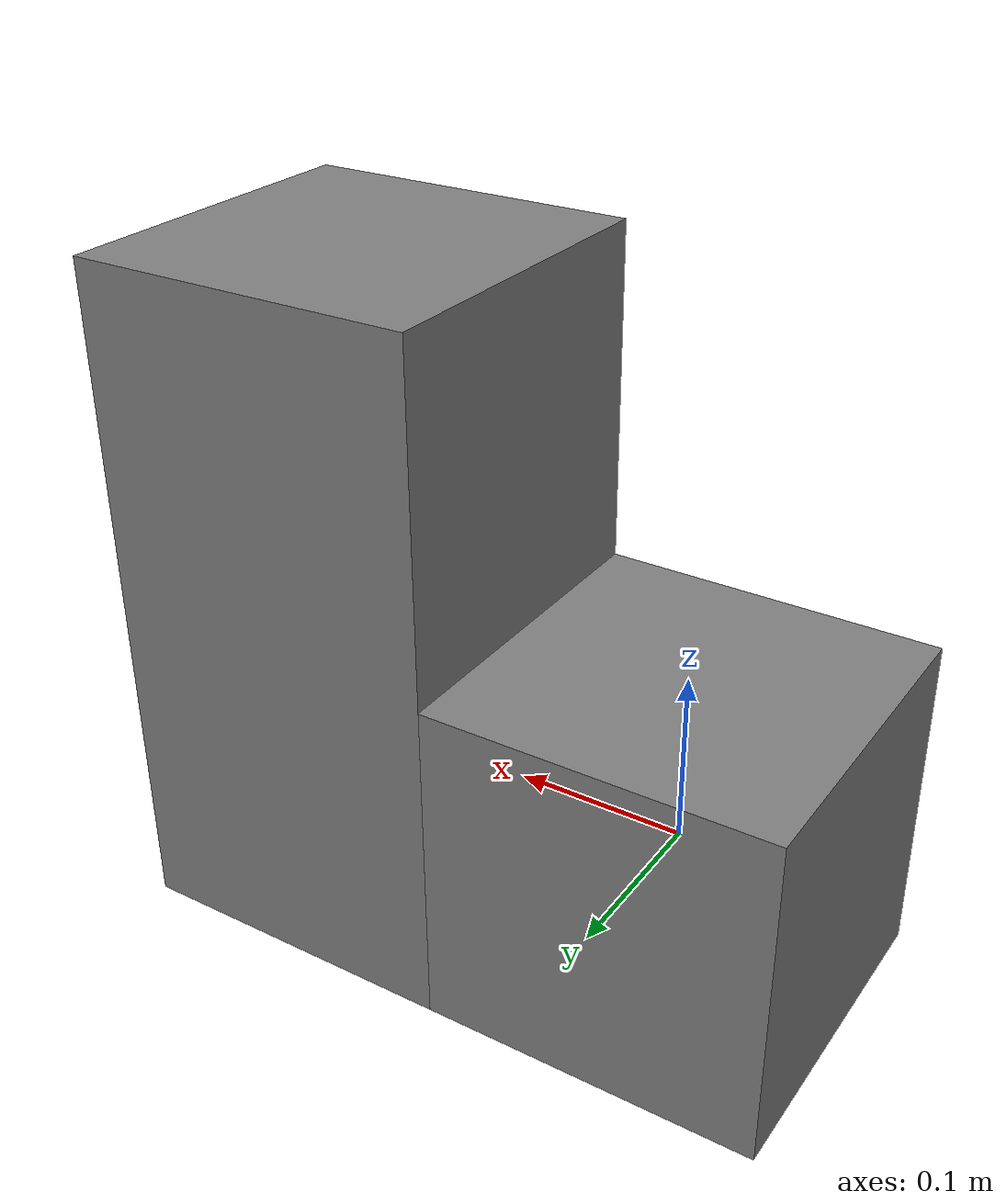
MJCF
<?xml version="1.0" ?>
<mujoco>
    <worldbody>
        <body name="base" pos="0.0 0.0 0.0" quat='1 0 0 0'>
            <geom type="box" size="0.1 0.1 0.1"/>
            <inertial mass="1.0" pos="0.05 0.05 0.05" diaginertia="0.00167 0.00167 0.00167"/>
            <body name="attached_part" pos="0.2 0.0 0.1" quat="1 0 0 0">
                <inertial mass="5.0" pos="0.05 0.05 0.1" diaginertia='0.02083335 0.020833333500000002 0.008333334999999999'/>
                <geom type="box" size="0.1 0.1 0.2" />
                <joint name="joint" pos="0.0 0.0 -0.1" axis="1 0 0" armature="0.01" frictionloss="0.1" damping="10.0"/>
            </body>
        </body>
    </worldbody>

    <actuator>
        <motor name="motor" joint="joint" ctrllimited="true" ctrlrange="-10 10"/>
    </actuator>
</mujoco>
